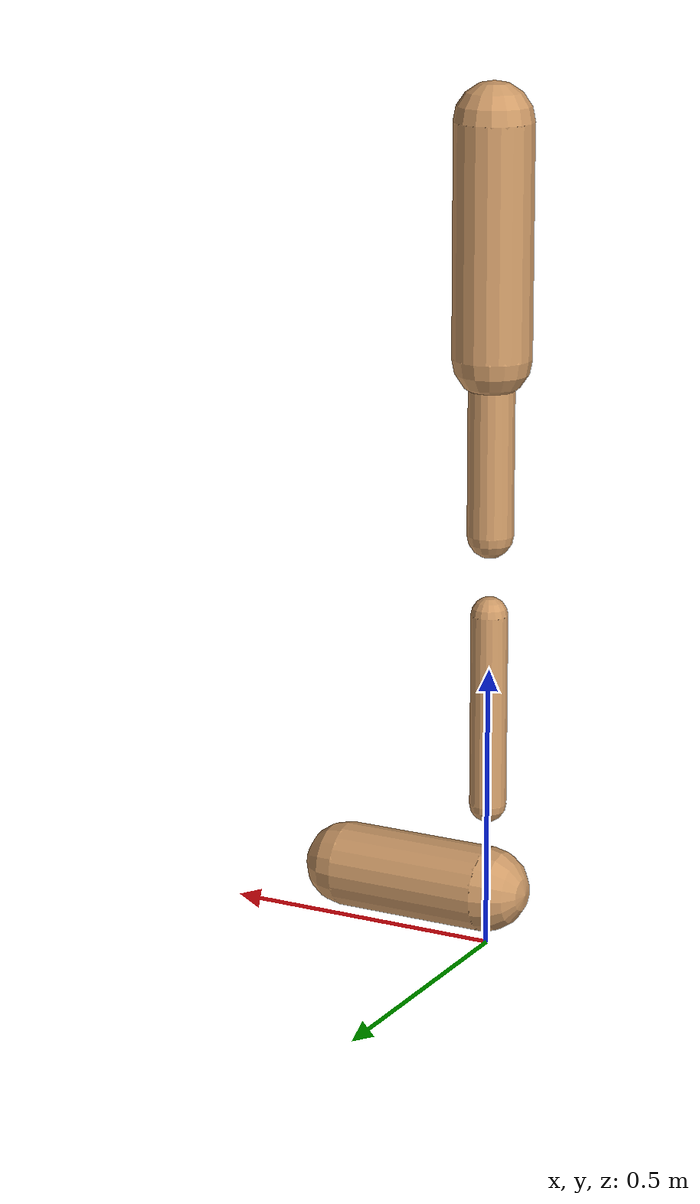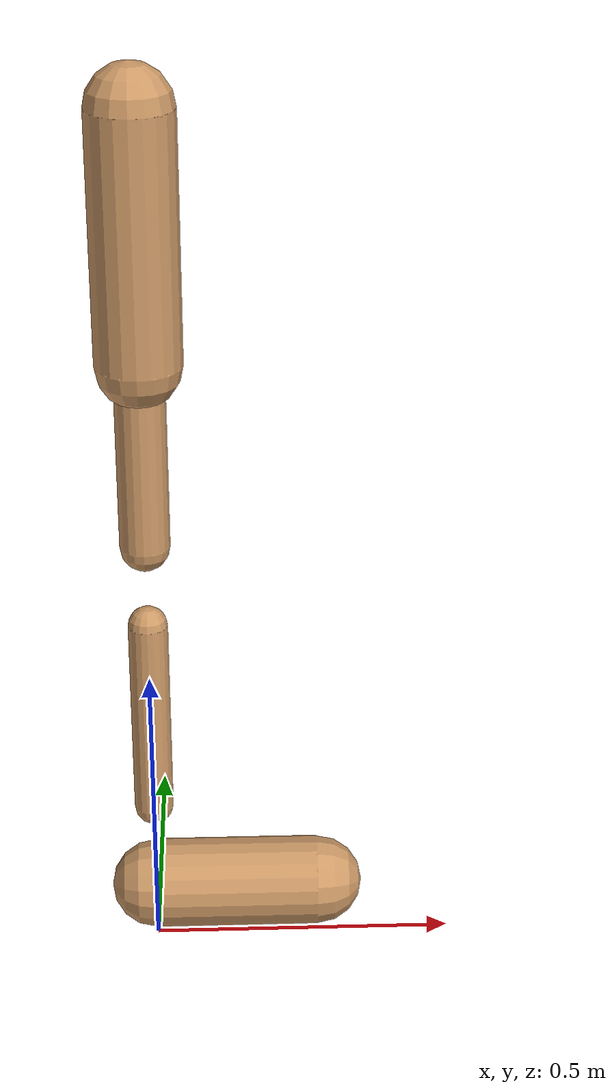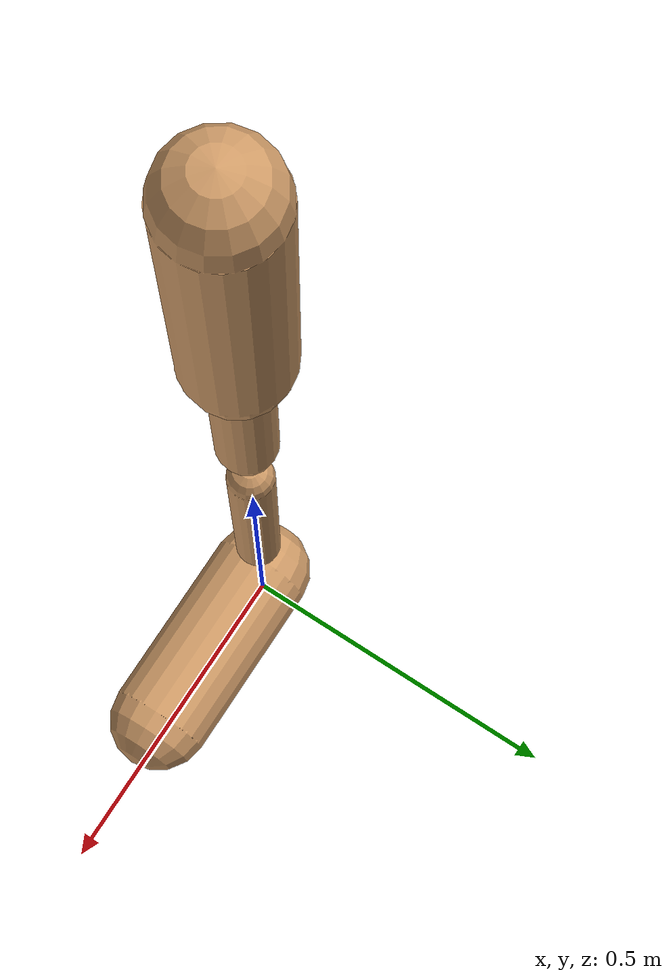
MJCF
<mujoco model="walker2d">
  <compiler angle="degree" coordinate="global" inertiafromgeom="true" />
  <default>
    <joint armature="0.01" damping=".1" limited="true" />
    <geom conaffinity="0" condim="3" contype="1" density="1000" friction="0.8 .1 .1" rgba="0.8 0.6 .4 1" />
  </default>
  <option integrator="RK4" timestep="0.002" />
  <worldbody>

    <body name="torso" pos="0 0 -0.3005263835820069">
      <joint armature="0" axis="1 0 0" damping="0" limited="false" name="ignorex" pos="0 0 0" stiffness="0" type="slide" />
      <joint armature="0" axis="0 0 1" damping="0" limited="false" name="ignorez" pos="0 0 0" ref="1.25" stiffness="0" type="slide" />
      <joint armature="0" axis="0 1 0" damping="0" limited="false" name="ignorey" pos="0 0 0" stiffness="0" type="hinge" />
      <geom fromto="0 0 1.45 0 0 1.05" name="torso_geom" size="0.06891826426510438" type="capsule" />
      <body name="thigh">
        <joint axis="0 -1 0" name="thigh_joint" pos="0 0 1.05" range="-150 0" type="hinge" />
        <geom fromto="0.0 0.0 1.05 0.0 0.0 0.7423546027493717" name="thigh_geom" size="0.040394899335688905" type="capsule" />
        <body name="leg" pos="0.0 0.0 0.14235460274937173">
          <joint axis="0 -1 0" name="leg_joint" pos="0 0 0.6" range="-150 0" type="hinge" />
          <geom fromto="0.0 0.0 0.6 0.0 0.0 0.2581717808326352" name="leg_geom" size="0.03231591946855113" type="capsule" />
          <body name="foot" pos="0.0 0.0 0.1581717808326352">
            <joint axis="0 -1 0" name="foot_joint" pos="0 0 0.1" range="-45 45" type="hinge" />
            <geom fromto="-0.0 0.0 0.1 0.2752308616395943 0.0 0.1" name="foot_geom" size="0.07500276964984776" type="capsule" />
          </body>
        </body>
      </body>

      <body name="thigh_left">
        <joint axis="0 -1 0" name="thigh_left_joint" pos="0 0 1.05" range="-150 0" type="hinge" />
        <geom fromto="0.0 0.0 1.05 0.0 0.0 0.7423546027493717" name="thigh_left_geom" rgba=".7 .3 .6 1" size="0.040394899335688905" type="capsule" />
        <body name="leg_left" pos="0.0 0.0 0.14235460274937173">
          <joint axis="0 -1 0" name="leg_left_joint" pos="0 0 0.6" range="-150 0" type="hinge" />
          <geom fromto="0.0 0.0 0.6 0.0 0.0 0.2581717808326352" name="leg_left_geom" rgba=".7 .3 .6 1" size="0.03231591946855113" type="capsule" />
          <body name="foot_left" pos="0.0 0.0 0.1581717808326352">
            <joint axis="0 -1 0" name="foot_left_joint" pos="0 0 0.1" range="-45 45" type="hinge" />
            <geom fromto="-0.0 0.0 0.1 0.2752308616395943 0.0 0.1" name="foot_left_geom" rgba=".7 .3 .6 1" size="0.07500276964984776" type="capsule" />
          </body>
        </body>
      </body>
    </body>
  </worldbody>
  <actuator>

    <motor ctrllimited="true" ctrlrange="-1.0 1.0" gear="100" joint="thigh_joint" />
    <motor ctrllimited="true" ctrlrange="-1.0 1.0" gear="100" joint="leg_joint" />
    <motor ctrllimited="true" ctrlrange="-1.0 1.0" gear="100" joint="foot_joint" />
    <motor ctrllimited="true" ctrlrange="-1.0 1.0" gear="100" joint="thigh_left_joint" />
    <motor ctrllimited="true" ctrlrange="-1.0 1.0" gear="100" joint="leg_left_joint" />
    <motor ctrllimited="true" ctrlrange="-1.0 1.0" gear="100" joint="foot_left_joint" />

  </actuator>
</mujoco>
